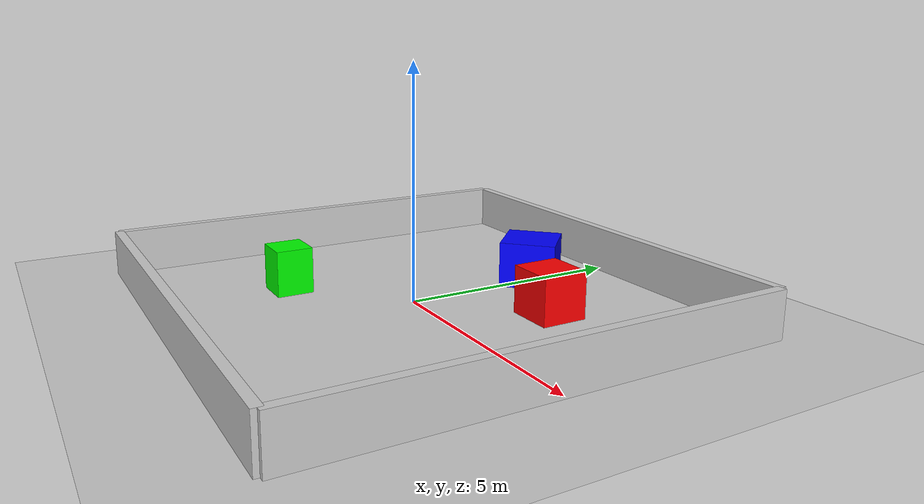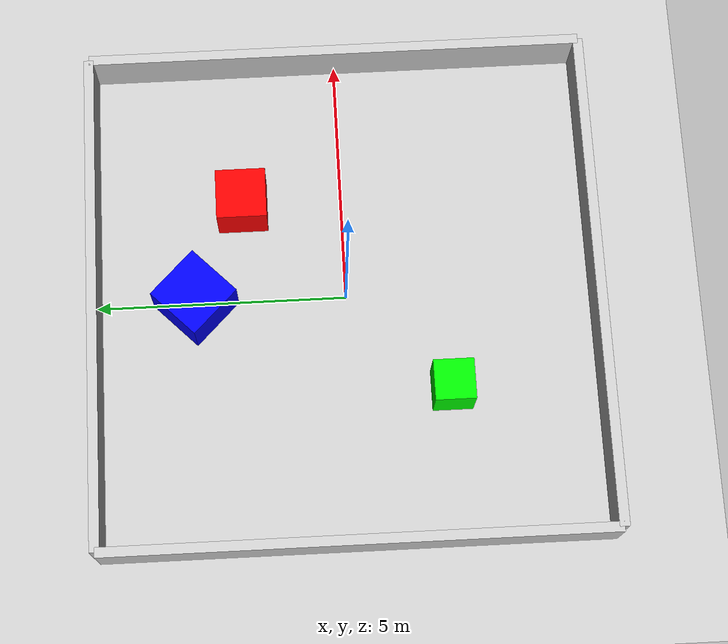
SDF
<?xml version="1.0" ?>
<sdf version="1.6">
  <world name="world">
    <!-- Ground Plane -->
    <include>
      <uri>model://ground_plane</uri>
    </include>

    <!-- Lighting -->
    <include>
      <uri>model://sun</uri>
    </include>

    <!-- Walls: Form a 10m x 10m enclosure -->
    <!-- North Wall (x=0, y=5, length=10m along x) -->
    <model name="north_wall">
      <static>true</static>
      <pose>0 5 0.5 0 0 0</pose>
      <link name="link">
        <collision name="collision">
          <geometry>
            <box><size>10 0.2 1</size></box>
          </geometry>
        </collision>
        <visual name="visual">
          <geometry>
            <box><size>10 0.2 1</size></box>
          </geometry>
          <material>
            <ambient>0.8 0.8 0.8 1</ambient>
            <diffuse>0.8 0.8 0.8 1</diffuse>
          </material>
        </visual>
      </link>
    </model>

    <!-- South Wall (x=0, y=-5, length=10m along x) -->
    <model name="south_wall">
      <static>true</static>
      <pose>0 -5 0.5 0 0 0</pose>
      <link name="link">
        <collision name="collision">
          <geometry>
            <box><size>10 0.2 1</size></box>
          </geometry>
        </collision>
        <visual name="visual">
          <geometry>
            <box><size>10 0.2 1</size></box>
          </geometry>
          <material>
            <ambient>0.8 0.8 0.8 1</ambient>
            <diffuse>0.8 0.8 0.8 1</diffuse>
          </material>
        </visual>
      </link>
    </model>

    <!-- East Wall (x=5, y=0, length=10m along y) -->
    <model name="east_wall">
      <static>true</static>
      <pose>5 0 0.5 0 0 1.5708</pose>
      <link name="link">
        <collision name="collision">
          <geometry>
            <box><size>10 0.2 1</size></box>
          </geometry>
        </collision>
        <visual name="visual">
          <geometry>
            <box><size>10 0.2 1</size></box>
          </geometry>
          <material>
            <ambient>0.8 0.8 0.8 1</ambient>
            <diffuse>0.8 0.8 0.8 1</diffuse>
          </material>
        </visual>
      </link>
    </model>

    <!-- West Wall (x=-5, y=0, length=10m along y) -->
    <model name="west_wall">
      <static>true</static>
      <pose>-5 0 0.5 0 0 1.5708</pose>
      <link name="link">
        <collision name="collision">
          <geometry>
            <box><size>10 0.2 1</size></box>
          </geometry>
        </collision>
        <visual name="visual">
          <geometry>
            <box><size>10 0.2 1</size></box>
          </geometry>
          <material>
            <ambient>0.8 0.8 0.8 1</ambient>
            <diffuse>0.8 0.8 0.8 1</diffuse>
          </material>
        </visual>
      </link>
    </model>

    <!-- Obstacles: Boxes inside the arena -->
    <model name="box1">
      <static>true</static>
      <pose>2 2 0.5 0 0 0</pose>
      <link name="link">
        <collision name="collision">
          <geometry>
            <box><size>1 1 1</size></box>
          </geometry>
        </collision>
        <visual name="visual">
          <geometry>
            <box><size>1 1 1</size></box>
          </geometry>
          <material>
            <ambient>1 0 0 1</ambient>
            <diffuse>1 0 0 1</diffuse>
          </material>
        </visual>
      </link>
    </model>

    <model name="box2">
      <static>true</static>
      <pose>-2 -2 0.5 0 0 0</pose>
      <link name="link">
        <collision name="collision">
          <geometry>
            <box><size>0.8 0.8 1</size></box>
          </geometry>
        </collision>
        <visual name="visual">
          <geometry>
            <box><size>0.8 0.8 1</size></box>
          </geometry>
          <material>
            <ambient>0 1 0 1</ambient>
            <diffuse>0 1 0 1</diffuse>
          </material>
        </visual>
      </link>
    </model>

    <model name="box3">
      <static>true</static>
      <pose>0 3 0.5 0 0 0.7854</pose>
      <link name="link">
        <collision name="collision">
          <geometry>
            <box><size>1.2 1.2 1</size></box>
          </geometry>
        </collision>
        <visual name="visual">
          <geometry>
            <box><size>1.2 1.2 1</size></box>
          </geometry>
          <material>
            <ambient>0 0 1 1</ambient>
            <diffuse>0 0 1 1</diffuse>
          </material>
        </visual>
      </link>
    </model>
  </world>
</sdf>
